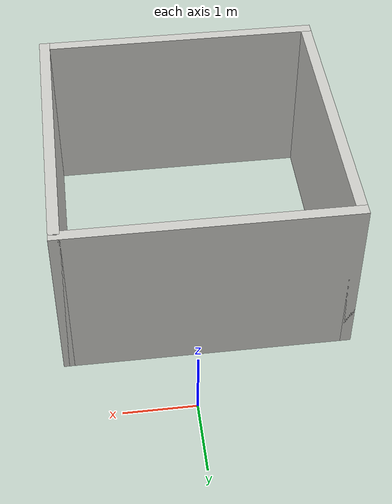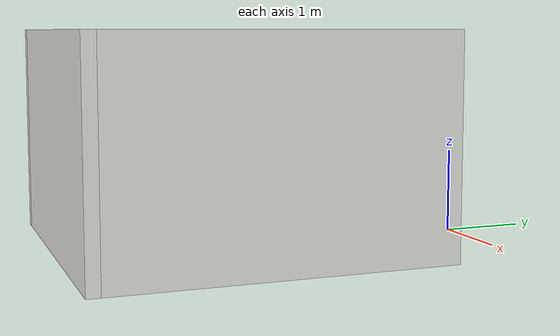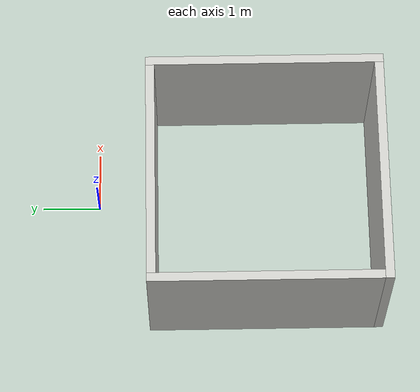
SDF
<?xml version='1.0'?>
<sdf version='1.7'>
  <model name='WriteSquare'>
    <pose>-0.255 -2.4325 0 0 -0 0</pose>
    <link name='Wall_0'>
      <collision name='Wall_0_Collision'>
        <geometry>
          <box>
            <size>4 0.15 2.5</size>
          </box>
        </geometry>
        <pose>0 0 1.25 0 -0 0</pose>
      </collision>
      <visual name='Wall_0_Visual'>
        <pose>0 0 1.25 0 -0 0</pose>
        <geometry>
          <box>
            <size>4 0.15 2.5</size>
          </box>
        </geometry>
        <material>
          <script>
            <uri>file://media/materials/scripts/gazebo.material</uri>
            <name>Gazebo/CeilingTiled</name>
          </script>
          <ambient>1 1 1 1</ambient>
        </material>
        <meta>
          <layer>0</layer>
        </meta>
      </visual>
      <pose>0 1.4925 0 0 -0 0</pose>
    </link>
    <link name='Wall_2'>
      <collision name='Wall_2_Collision'>
        <geometry>
          <box>
            <size>4 0.15 2.5</size>
          </box>
        </geometry>
        <pose>0 0 1.25 0 -0 0</pose>
      </collision>
      <visual name='Wall_2_Visual'>
        <pose>0 0 1.25 0 -0 0</pose>
        <geometry>
          <box>
            <size>4 0.15 2.5</size>
          </box>
        </geometry>
        <material>
          <script>
            <uri>file://media/materials/scripts/gazebo.material</uri>
            <name>Gazebo/CeilingTiled</name>
          </script>
          <ambient>1 1 1 1</ambient>
        </material>
        <meta>
          <layer>0</layer>
        </meta>
      </visual>
      <pose>1.925 -0.4325 0 0 -0 -1.5708</pose>
    </link>
    <link name='Wall_3'>
      <collision name='Wall_3_Collision'>
        <geometry>
          <box>
            <size>4 0.15 2.5</size>
          </box>
        </geometry>
        <pose>0 0 1.25 0 -0 0</pose>
      </collision>
      <visual name='Wall_3_Visual'>
        <pose>0 0 1.25 0 -0 0</pose>
        <geometry>
          <box>
            <size>4 0.15 2.5</size>
          </box>
        </geometry>
        <material>
          <script>
            <uri>file://media/materials/scripts/gazebo.material</uri>
            <name>Gazebo/CeilingTiled</name>
          </script>
          <ambient>1 1 1 1</ambient>
        </material>
        <meta>
          <layer>0</layer>
        </meta>
      </visual>
      <pose>0 -2.3575 0 0 -0 3.14159</pose>
    </link>
    <link name='Wall_4'>
      <collision name='Wall_4_Collision'>
        <geometry>
          <box>
            <size>4 0.15 2.5</size>
          </box>
        </geometry>
        <pose>0 0 1.25 0 -0 0</pose>
      </collision>
      <visual name='Wall_4_Visual'>
        <pose>0 0 1.25 0 -0 0</pose>
        <geometry>
          <box>
            <size>4 0.15 2.5</size>
          </box>
        </geometry>
        <material>
          <script>
            <uri>file://media/materials/scripts/gazebo.material</uri>
            <name>Gazebo/CeilingTiled</name>
          </script>
          <ambient>1 1 1 1</ambient>
        </material>
        <meta>
          <layer>0</layer>
        </meta>
      </visual>
      <pose>-1.925 -0.4325 0 0 -0 1.5708</pose>
    </link>
    <static>1</static>
  </model>
</sdf>
